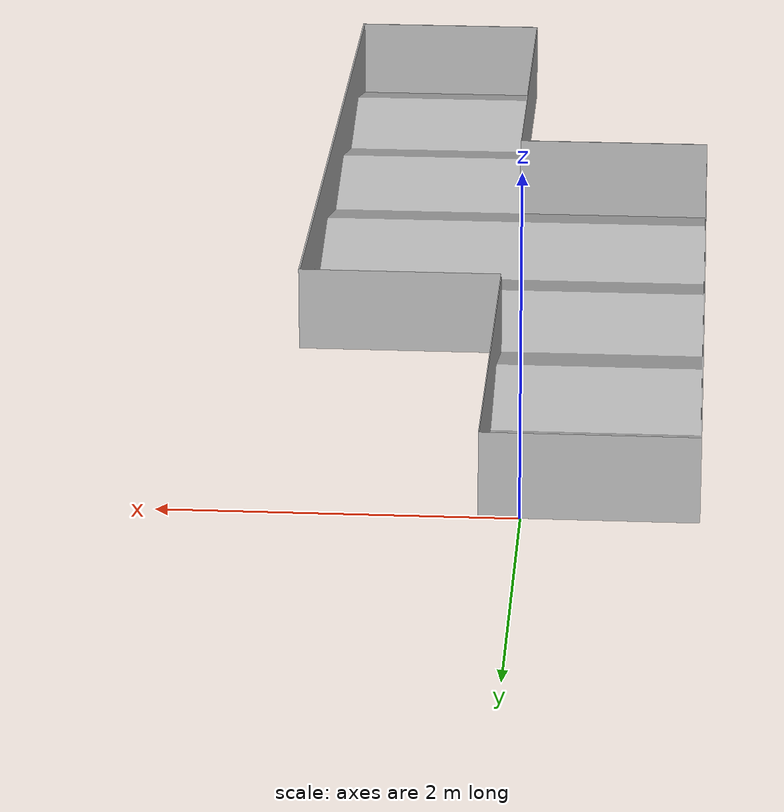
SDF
<?xml version="1.0" ?>
<sdf version="1.6">
  <model name="continuous_ramp_plane">
    <static>true</static>
    <pose>-1 0 0 1.5708 0 0</pose>
    <link name="link">
      <collision name="collision">
        <geometry>
          <mesh>
            <scale>0.01 0.01 0.01</scale>
            <uri>model://continuous_ramp_plane/continuous_ramp_plane.dae</uri>
          </mesh>
        </geometry>
        <surface>
          <friction>
            <ode>
              <mu>100</mu>
              <mu2>50</mu2>
            </ode>
          </friction>
        </surface>
      </collision>
      <visual name="visual">
        <geometry>
          <mesh>
            <scale>0.01 0.01 0.01</scale>
            <uri>model://continuous_ramp_plane/continuous_ramp_plane.dae</uri>
          </mesh>
        </geometry>
      </visual>
    </link>
  </model>
</sdf>
